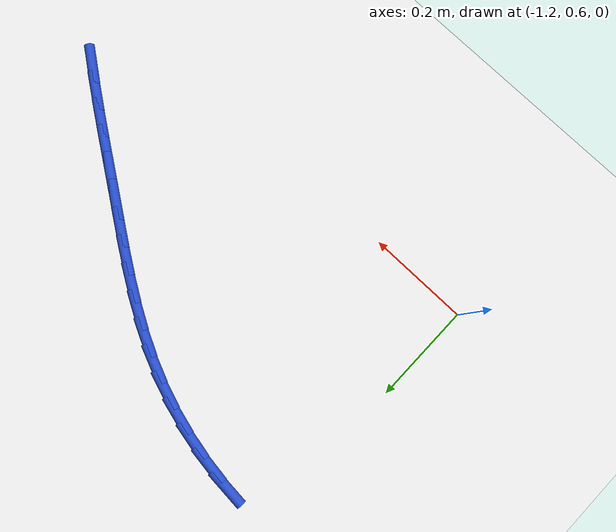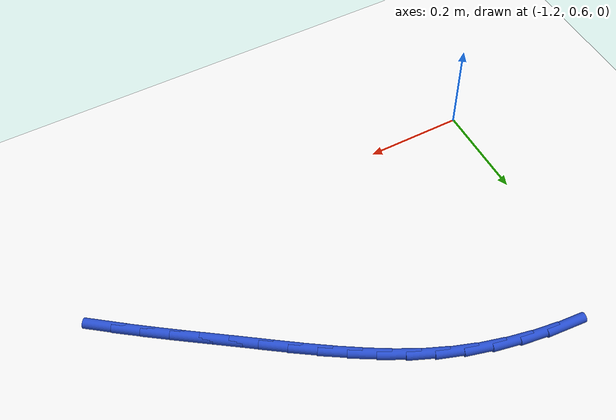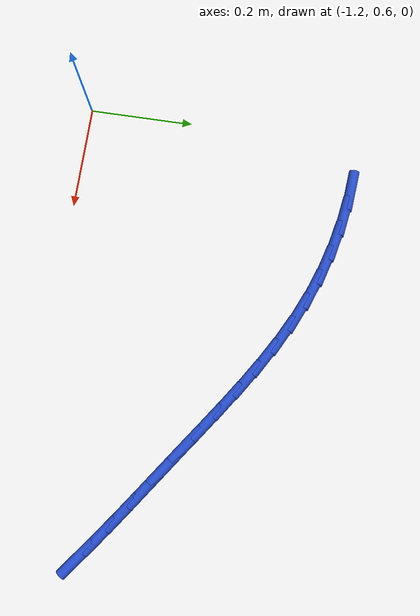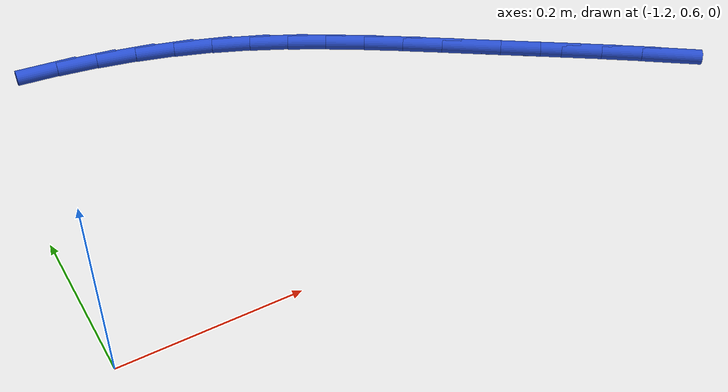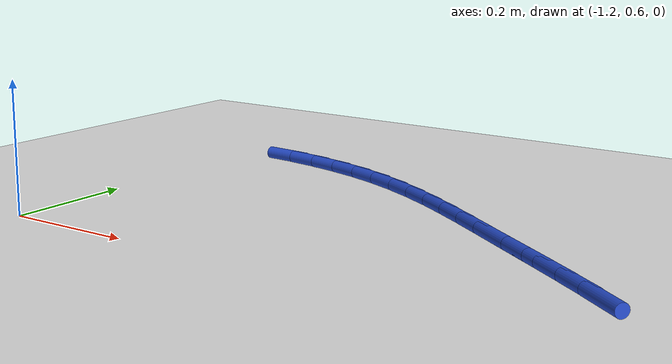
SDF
<sdf version="1.6">
 <world name="default">
  <model name="ground_plane">
   <static>1</static>
   <link name="link">
    <collision name="collision">
     <geometry><plane><normal>0 0 1</normal><size>100 100</size></plane></geometry>
     <surface><friction><ode><mu>100</mu><mu2>50</mu2></ode></friction></surface>
    </collision>
    <visual name="visual">
     <cast_shadows>0</cast_shadows>
     <geometry><plane><normal>0 0 1</normal><size>100 100</size></plane></geometry>
     <material>
      <script><uri>file://media/materials/scripts/gazebo.material</uri><name>Gazebo/WhiteGlow</name></script>
     </material>
    </visual>
   </link>
  </model>
  <model name="line">
   <link name="link_16">
    <pose>-0.36348753746418655 0.7267670658999158 0.01 0 1.57 -0.6492543505329841</pose>
    <collision name="collision">
     <geometry><cylinder><radius>0.01</radius><length>0.08</length></cylinder></geometry>
    </collision>
    <visual name="visual">
     <material>
      <script><name>Gazebo/Blue</name><uri>file://media/materials/scripts/gazebo.material</uri></script>
     </material>
     <geometry><cylinder><radius>0.01</radius><length>0.08</length></cylinder></geometry>
    </visual>
   </link>
   <link name="link_17">
    <pose>-0.4064272607245261 0.7593595395154246 0.01 0 1.57 -0.6305203721753015</pose>
    <collision name="collision">
     <geometry><cylinder><radius>0.01</radius><length>0.08</length></cylinder></geometry>
    </collision>
    <visual name="visual">
     <material>
      <script><name>Gazebo/Blue</name><uri>file://media/materials/scripts/gazebo.material</uri></script>
     </material>
     <geometry><cylinder><radius>0.01</radius><length>0.08</length></cylinder></geometry>
    </visual>
   </link>
   <link name="link_18">
    <pose>-0.45016686703884096 0.7912856047085113 0.01 0 1.57 -0.6187178103595079</pose>
    <collision name="collision">
     <geometry><cylinder><radius>0.01</radius><length>0.08</length></cylinder></geometry>
    </collision>
    <visual name="visual">
     <material>
      <script><name>Gazebo/Blue</name><uri>file://media/materials/scripts/gazebo.material</uri></script>
     </material>
     <geometry><cylinder><radius>0.01</radius><length>0.08</length></cylinder></geometry>
    </visual>
   </link>
   <link name="link_19">
    <pose>-0.4943815064878083 0.8227653269473136 0.01 0 1.57 -0.6137160250414204</pose>
    <collision name="collision">
     <geometry><cylinder><radius>0.01</radius><length>0.08</length></cylinder></geometry>
    </collision>
    <visual name="visual">
     <material>
      <script><name>Gazebo/Blue</name><uri>file://media/materials/scripts/gazebo.material</uri></script>
     </material>
     <geometry><cylinder><radius>0.01</radius><length>0.08</length></cylinder></geometry>
    </visual>
   </link>
   <link name="link_20">
    <pose>-0.5387463291521055 0.8540187716999694 0.01 0 1.57 -0.615392828445094</pose>
    <collision name="collision">
     <geometry><cylinder><radius>0.01</radius><length>0.08</length></cylinder></geometry>
    </collision>
    <visual name="visual">
     <material>
      <script><name>Gazebo/Blue</name><uri>file://media/materials/scripts/gazebo.material</uri></script>
     </material>
     <geometry><cylinder><radius>0.01</radius><length>0.08</length></cylinder></geometry>
    </visual>
   </link>
   <link name="link_21">
    <pose>-0.5829395176763722 0.8852623160702473 0.01 0 1.57 -0.6176316050381535</pose>
    <collision name="collision">
     <geometry><cylinder><radius>0.01</radius><length>0.08</length></cylinder></geometry>
    </collision>
    <visual name="visual">
     <material>
      <script><name>Gazebo/Blue</name><uri>file://media/materials/scripts/gazebo.material</uri></script>
     </material>
     <geometry><cylinder><radius>0.01</radius><length>0.08</length></cylinder></geometry>
    </visual>
   </link>
   <link name="link_22">
    <pose>-0.6268512194045954 0.916454534505734 0.01 0 1.57 -0.6102689008224084</pose>
    <collision name="collision">
     <geometry><cylinder><radius>0.01</radius><length>0.08</length></cylinder></geometry>
    </collision>
    <visual name="visual">
     <material>
      <script><name>Gazebo/Blue</name><uri>file://media/materials/scripts/gazebo.material</uri></script>
     </material>
     <geometry><cylinder><radius>0.01</radius><length>0.08</length></cylinder></geometry>
    </visual>
   </link>
   <link name="link_23">
    <pose>-0.6707186541619105 0.9471318735817656 0.01 0 1.57 -0.5921489962894837</pose>
    <collision name="collision">
     <geometry><cylinder><radius>0.01</radius><length>0.08</length></cylinder></geometry>
    </collision>
    <visual name="visual">
     <material>
      <script><name>Gazebo/Blue</name><uri>file://media/materials/scripts/gazebo.material</uri></script>
     </material>
     <geometry><cylinder><radius>0.01</radius><length>0.08</length></cylinder></geometry>
    </visual>
   </link>
   <link name="link_24">
    <pose>-0.7148111730505303 0.9767917001184029 0.01 0 1.57 -0.5629875101248101</pose>
    <collision name="collision">
     <geometry><cylinder><radius>0.01</radius><length>0.08</length></cylinder></geometry>
    </collision>
    <visual name="visual">
     <material>
      <script><name>Gazebo/Blue</name><uri>file://media/materials/scripts/gazebo.material</uri></script>
     </material>
     <geometry><cylinder><radius>0.01</radius><length>0.08</length></cylinder></geometry>
    </visual>
   </link>
   <link name="link_25">
    <pose>-0.759398127172669 1.0049313809357068 0.01 0 1.57 -0.522500629139925</pose>
    <collision name="collision">
     <geometry><cylinder><radius>0.01</radius><length>0.08</length></cylinder></geometry>
    </collision>
    <visual name="visual">
     <material>
      <script><name>Gazebo/Blue</name><uri>file://media/materials/scripts/gazebo.material</uri></script>
     </material>
     <geometry><cylinder><radius>0.01</radius><length>0.08</length></cylinder></geometry>
    </visual>
   </link>
   <link name="link_26">
    <pose>-0.8047488676305398 1.031048282853739 0.01 0 1.57 -0.4705150411085333</pose>
    <collision name="collision">
     <geometry><cylinder><radius>0.01</radius><length>0.08</length></cylinder></geometry>
    </collision>
    <visual name="visual">
     <material>
      <script><name>Gazebo/Blue</name><uri>file://media/materials/scripts/gazebo.material</uri></script>
     </material>
     <geometry><cylinder><radius>0.01</radius><length>0.08</length></cylinder></geometry>
    </visual>
   </link>
   <link name="link_27">
    <pose>-0.8511327455263562 1.05463977269256 0.01 0 1.57 -0.40715261016869847</pose>
    <collision name="collision">
     <geometry><cylinder><radius>0.01</radius><length>0.08</length></cylinder></geometry>
    </collision>
    <visual name="visual">
     <material>
      <script><name>Gazebo/Blue</name><uri>file://media/materials/scripts/gazebo.material</uri></script>
     </material>
     <geometry><cylinder><radius>0.01</radius><length>0.08</length></cylinder></geometry>
    </visual>
   </link>
   <link name="link_28">
    <pose>-0.8988183539453649 1.0752041963694134 0.01 0 1.57 -0.33692717885136064</pose>
    <collision name="collision">
     <geometry><cylinder><radius>0.01</radius><length>0.08</length></cylinder></geometry>
    </collision>
    <visual name="visual">
     <material>
      <script><name>Gazebo/Blue</name><uri>file://media/materials/scripts/gazebo.material</uri></script>
     </material>
     <geometry><cylinder><radius>0.01</radius><length>0.08</length></cylinder></geometry>
    </visual>
   </link>
   <link name="link_29">
    <pose>-0.9479416215634756 1.0924112565851412 0.01 0 1.57 -0.2687639586070809</pose>
    <collision name="collision">
     <geometry><cylinder><radius>0.01</radius><length>0.08</length></cylinder></geometry>
    </collision>
    <visual name="visual">
     <material>
      <script><name>Gazebo/Blue</name><uri>file://media/materials/scripts/gazebo.material</uri></script>
     </material>
     <geometry><cylinder><radius>0.01</radius><length>0.08</length></cylinder></geometry>
    </visual>
   </link>
   <link name="link_30">
    <pose>-0.9983551944055117 1.106296559783587 0.01 0 1.57 -0.20377385190422295</pose>
    <collision name="collision">
     <geometry><cylinder><radius>0.01</radius><length>0.08</length></cylinder></geometry>
    </collision>
    <visual name="visual">
     <material>
      <script><name>Gazebo/Blue</name><uri>file://media/materials/scripts/gazebo.material</uri></script>
     </material>
     <geometry><cylinder><radius>0.01</radius><length>0.08</length></cylinder></geometry>
    </visual>
   </link>
   <link name="link_31">
    <pose>-1.0498752838612866 1.1169427734244162 0.01 0 1.57 -0.14185894179360664</pose>
    <collision name="collision">
     <geometry><cylinder><radius>0.01</radius><length>0.08</length></cylinder></geometry>
    </collision>
    <visual name="visual">
     <material>
      <script><name>Gazebo/Blue</name><uri>file://media/materials/scripts/gazebo.material</uri></script>
     </material>
     <geometry><cylinder><radius>0.01</radius><length>0.08</length></cylinder></geometry>
    </visual>
   </link>
   <link name="link_32">
    <pose>-1.1023181013206125 1.124432564967294 0.01 0 1.57 -0.08284662429302278</pose>
    <collision name="collision">
     <geometry><cylinder><radius>0.01</radius><length>0.08</length></cylinder></geometry>
    </collision>
    <visual name="visual">
     <material>
      <script><name>Gazebo/Blue</name><uri>file://media/materials/scripts/gazebo.material</uri></script>
     </material>
     <geometry><cylinder><radius>0.01</radius><length>0.08</length></cylinder></geometry>
    </visual>
   </link>
  </model>
 </world>
</sdf>
